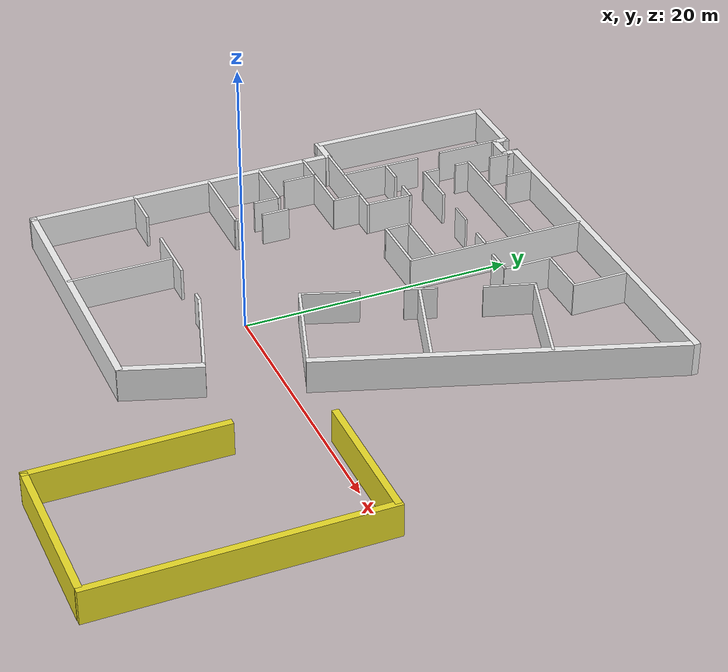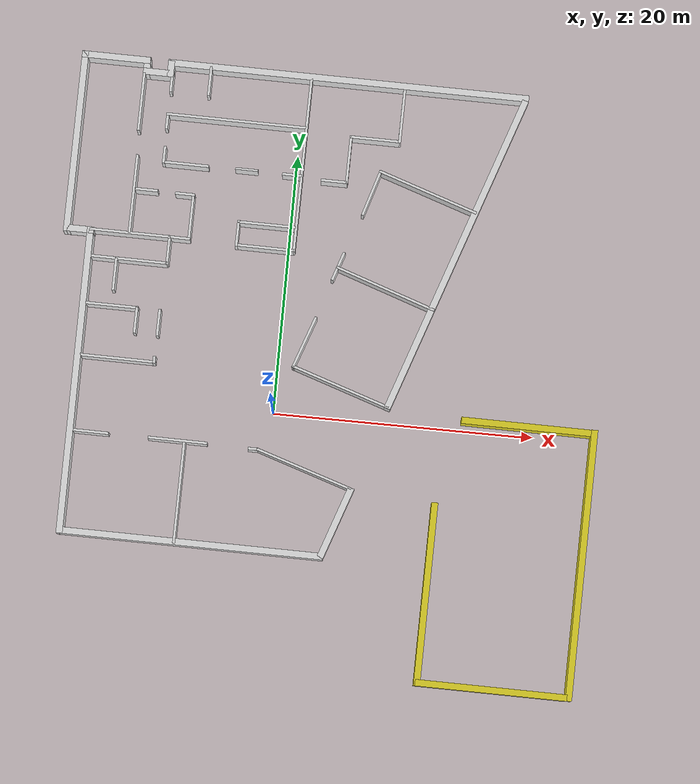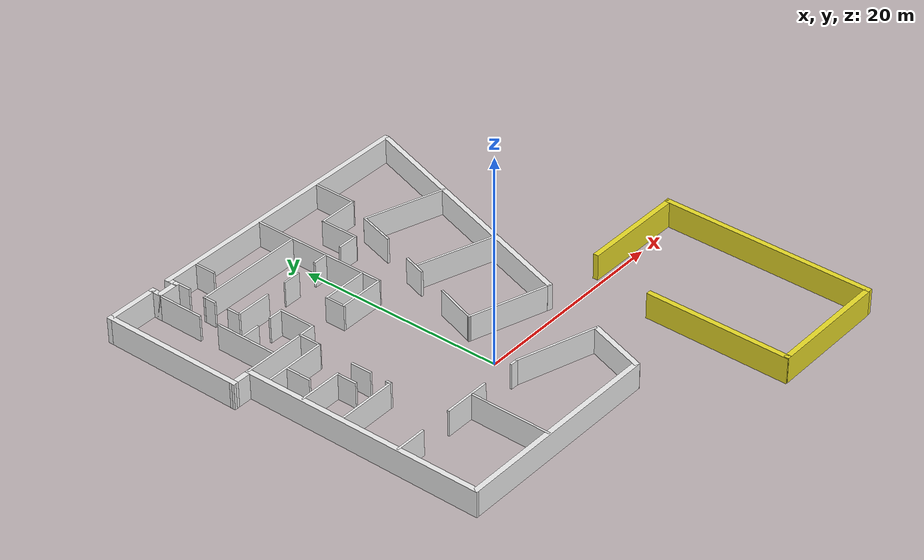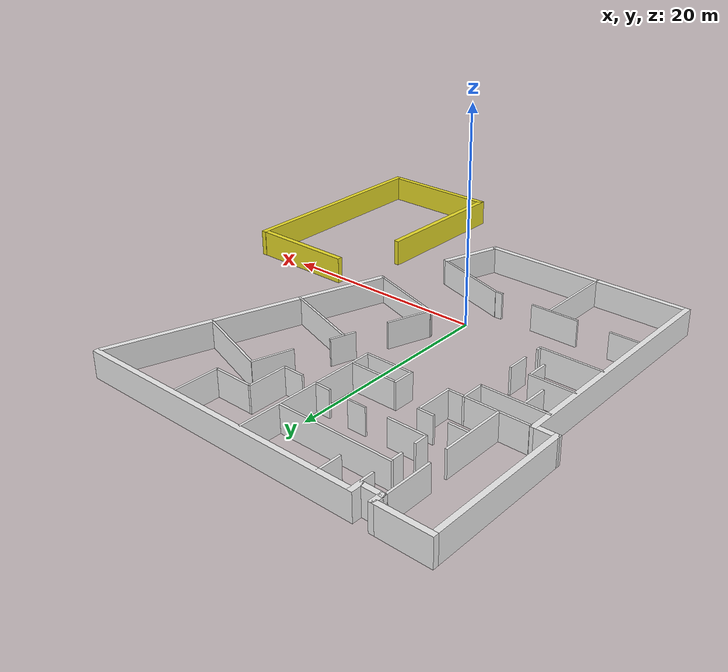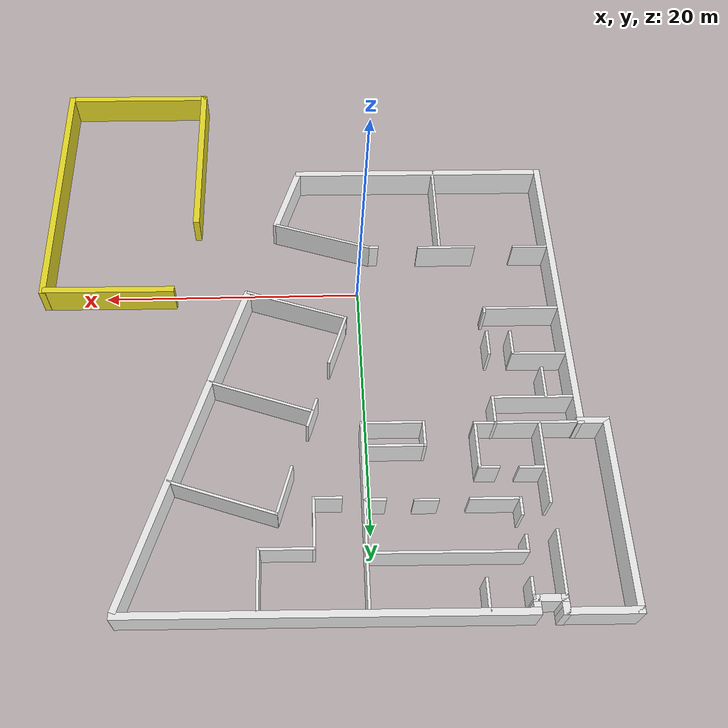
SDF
<sdf version="1.7">
 <world name="default">
  <model name="hospital_wall">
   <pose>3.70516 3.23402 0 0 -0 -1.57977</pose>
   <link name="Wall_0">
    <collision name="Wall_0_Collision">
     <geometry><box><size>27.85 0.5 2.5</size></box></geometry>
     <pose>0 0 1.25 0 -0 0</pose>
    </collision>
    <visual name="Wall_0_Visual">
     <pose>0 0 1.25 0 -0 0</pose>
     <geometry><box><size>27.85 0.5 2.5</size></box></geometry>
     <material>
      <script><uri>file://media/materials/scripts/gazebo.material</uri><name>Gazebo/White</name></script>
      <ambient>1 1 1 1</ambient>
     </material>
     <meta><layer>0</layer></meta>
    </visual>
    <pose>-22.6945 -0.556827 0 0 -0 -1.57078</pose>
   </link>
   <link name="Wall_101">
    <collision name="Wall_101_Collision">
     <geometry><box><size>1.25 0.2 2.5</size></box></geometry>
     <pose>0 0 1.25 0 -0 0</pose>
    </collision>
    <visual name="Wall_101_Visual">
     <pose>0 0 1.25 0 -0 0</pose>
     <geometry><box><size>1.25 0.2 2.5</size></box></geometry>
     <material>
      <script><uri>file://media/materials/scripts/gazebo.material</uri><name>Gazebo/White</name></script>
      <ambient>1 1 1 1</ambient>
     </material>
     <meta><layer>0</layer></meta>
    </visual>
    <pose>-18.1899 -14.0971 0 0 -0 3.14159</pose>
   </link>
   <link name="Wall_103">
    <collision name="Wall_103_Collision">
     <geometry><box><size>1.30009 0.2 2.5</size></box></geometry>
     <pose>0 0 1.25 0 -0 0</pose>
    </collision>
    <visual name="Wall_103_Visual">
     <pose>0 0 1.25 0 -0 0</pose>
     <geometry><box><size>1.30009 0.2 2.5</size></box></geometry>
     <material>
      <script><uri>file://media/materials/scripts/gazebo.material</uri><name>Gazebo/White</name></script>
      <ambient>1 1 1 1</ambient>
     </material>
     <meta><layer>0</layer></meta>
    </visual>
    <pose>-15.5522 -14.0461 0 0 -0 0</pose>
   </link>
   <link name="Wall_105">
    <collision name="Wall_105_Collision">
     <geometry><box><size>3.5 0.2 2.5</size></box></geometry>
     <pose>0 0 1.25 0 -0 0</pose>
    </collision>
    <visual name="Wall_105_Visual">
     <pose>0 0 1.25 0 -0 0</pose>
     <geometry><box><size>3.5 0.2 2.5</size></box></geometry>
     <material>
      <script><uri>file://media/materials/scripts/gazebo.material</uri><name>Gazebo/White</name></script>
      <ambient>1 1 1 1</ambient>
     </material>
     <meta><layer>0</layer></meta>
    </visual>
    <pose>-15.0024 -12.3017 0 0 -0 -1.5708</pose>
   </link>
   <link name="Wall_107">
    <collision name="Wall_107_Collision">
     <geometry><box><size>2.25 0.2 2.5</size></box></geometry>
     <pose>0 0 1.25 0 -0 0</pose>
    </collision>
    <visual name="Wall_107_Visual">
     <pose>0 0 1.25 0 -0 0</pose>
     <geometry><box><size>2.25 0.2 2.5</size></box></geometry>
     <material>
      <script><uri>file://media/materials/scripts/gazebo.material</uri><name>Gazebo/White</name></script>
      <ambient>1 1 1 1</ambient>
     </material>
     <meta><layer>0</layer></meta>
    </visual>
    <pose>-21.5791 -11.151 0 0 -0 3.14159</pose>
   </link>
   <link name="Wall_109">
    <collision name="Wall_109_Collision">
     <geometry><box><size>1.5 0.2 2.5</size></box></geometry>
     <pose>0 0 1.25 0 -0 0</pose>
    </collision>
    <visual name="Wall_109_Visual">
     <pose>0 0 1.25 0 -0 0</pose>
     <geometry><box><size>1.5 0.2 2.5</size></box></geometry>
     <material>
      <script><uri>file://media/materials/scripts/gazebo.material</uri><name>Gazebo/White</name></script>
      <ambient>1 1 1 1</ambient>
     </material>
     <meta><layer>0</layer></meta>
    </visual>
    <pose>-12.697 -12.138 0 0 -0 1.5708</pose>
   </link>
   <link name="Wall_111">
    <collision name="Wall_111_Collision">
     <geometry><box><size>6.05 0.2 2.5</size></box></geometry>
     <pose>0 0 1.25 0 -0 0</pose>
    </collision>
    <visual name="Wall_111_Visual">
     <pose>0 0 1.25 0 -0 0</pose>
     <geometry><box><size>6.05 0.2 2.5</size></box></geometry>
     <material>
      <script><uri>file://media/materials/scripts/gazebo.material</uri><name>Gazebo/White</name></script>
      <ambient>1 1 1 1</ambient>
     </material>
     <meta><layer>0</layer></meta>
    </visual>
    <pose>-12.3324 -16.088 0 0 -0 0</pose>
   </link>
   <link name="Wall_113">
    <collision name="Wall_113_Collision">
     <geometry><box><size>1.75 0.2 2.5</size></box></geometry>
     <pose>0 0 1.25 0 -0 0</pose>
    </collision>
    <visual name="Wall_113_Visual">
     <pose>0 0 1.25 0 -0 0</pose>
     <geometry><box><size>1.75 0.2 2.5</size></box></geometry>
     <material>
      <script><uri>file://media/materials/scripts/gazebo.material</uri><name>Gazebo/White</name></script>
      <ambient>1 1 1 1</ambient>
     </material>
     <meta><layer>0</layer></meta>
    </visual>
    <pose>-12.7232 -15.1011 0 0 -0 -1.5708</pose>
   </link>
   <link name="Wall_115">
    <collision name="Wall_115_Collision">
     <geometry><box><size>4.5 0.2 2.5</size></box></geometry>
     <pose>0 0 1.25 0 -0 0</pose>
    </collision>
    <visual name="Wall_115_Visual">
     <pose>0 0 1.25 0 -0 0</pose>
     <geometry><box><size>4.5 0.2 2.5</size></box></geometry>
     <material>
      <script><uri>file://media/materials/scripts/gazebo.material</uri><name>Gazebo/White</name></script>
      <ambient>1 1 1 1</ambient>
     </material>
     <meta><layer>0</layer></meta>
    </visual>
    <pose>-10.9872 -5.67707 0 0 -0 1.5708</pose>
   </link>
   <link name="Wall_117">
    <collision name="Wall_117_Collision">
     <geometry><box><size>4.5 0.2 2.5</size></box></geometry>
     <pose>0 0 1.25 0 -0 0</pose>
    </collision>
    <visual name="Wall_117_Visual">
     <pose>0 0 1.25 0 -0 0</pose>
     <geometry><box><size>4.5 0.2 2.5</size></box></geometry>
     <material>
      <script><uri>file://media/materials/scripts/gazebo.material</uri><name>Gazebo/White</name></script>
      <ambient>1 1 1 1</ambient>
     </material>
     <meta><layer>0</layer></meta>
    </visual>
    <pose>-9.1948 -5.67532 0 0 -0 1.5708</pose>
   </link>
   <link name="Wall_12">
    <collision name="Wall_12_Collision">
     <geometry><box><size>14 0.5 2.5</size></box></geometry>
     <pose>0 0 1.25 0 -0 0</pose>
    </collision>
    <visual name="Wall_12_Visual">
     <pose>0 0 1.25 0 -0 0</pose>
     <geometry><box><size>14 0.5 2.5</size></box></geometry>
     <material>
      <script><uri>file://media/materials/scripts/gazebo.material</uri><name>Gazebo/White</name></script>
      <ambient>1 1 1 1</ambient>
     </material>
     <meta><layer>0</layer></meta>
    </visual>
    <pose>-15.9442 -20.8921 0 0 -0 0</pose>
   </link>
   <link name="Wall_120">
    <collision name="Wall_120_Collision">
     <geometry><box><size>2 0.2 2.5</size></box></geometry>
     <pose>0 0 1.25 0 -0 0</pose>
    </collision>
    <visual name="Wall_120_Visual">
     <pose>0 0 1.25 0 -0 0</pose>
     <geometry><box><size>2 0.2 2.5</size></box></geometry>
     <material>
      <script><uri>file://media/materials/scripts/gazebo.material</uri><name>Gazebo/White</name></script>
      <ambient>1 1 1 1</ambient>
     </material>
     <meta><layer>0</layer></meta>
    </visual>
    <pose>-10.0892 -7.82789 0 0 -0 0</pose>
   </link>
   <link name="Wall_122">
    <collision name="Wall_122_Collision">
     <geometry><box><size>2.5 0.2 2.5</size></box></geometry>
     <pose>0 0 1.25 0 -0 0</pose>
    </collision>
    <visual name="Wall_122_Visual">
     <pose>0 0 1.25 0 -0 0</pose>
     <geometry><box><size>2.5 0.2 2.5</size></box></geometry>
     <material>
      <script><uri>file://media/materials/scripts/gazebo.material</uri><name>Gazebo/White</name></script>
      <ambient>1 1 1 1</ambient>
     </material>
     <meta><layer>0</layer></meta>
    </visual>
    <pose>-6.02163 -16.8589 0 0 -0 3.14159</pose>
   </link>
   <link name="Wall_124">
    <collision name="Wall_124_Collision">
     <geometry><box><size>4.30001 0.2 2.5</size></box></geometry>
     <pose>0 0 1.25 0 -0 0</pose>
    </collision>
    <visual name="Wall_124_Visual">
     <pose>0 0 1.25 0 -0 0</pose>
     <geometry><box><size>4.30001 0.2 2.5</size></box></geometry>
     <material>
      <script><uri>file://media/materials/scripts/gazebo.material</uri><name>Gazebo/White</name></script>
      <ambient>1 1 1 1</ambient>
     </material>
     <meta><layer>0</layer></meta>
    </visual>
    <pose>-3.60823 -16.9331 0 0 -0 -1.5708</pose>
   </link>
   <link name="Wall_126">
    <collision name="Wall_126_Collision">
     <geometry><box><size>2 0.2 2.5</size></box></geometry>
     <pose>0 0 1.25 0 -0 0</pose>
    </collision>
    <visual name="Wall_126_Visual">
     <pose>0 0 1.25 0 -0 0</pose>
     <geometry><box><size>2 0.2 2.5</size></box></geometry>
     <material>
      <script><uri>file://media/materials/scripts/gazebo.material</uri><name>Gazebo/White</name></script>
      <ambient>1 1 1 1</ambient>
     </material>
     <meta><layer>0</layer></meta>
    </visual>
    <pose>-2.64995 -14.8874 0 0 -0 3.14159</pose>
   </link>
   <link name="Wall_128">
    <collision name="Wall_128_Collision">
     <geometry><box><size>0.55 0.2 2.5</size></box></geometry>
     <pose>0 0 1.25 0 -0 0</pose>
    </collision>
    <visual name="Wall_128_Visual">
     <pose>0 0 1.25 0 -0 0</pose>
     <geometry><box><size>0.55 0.2 2.5</size></box></geometry>
     <material>
      <script><uri>file://media/materials/scripts/gazebo.material</uri><name>Gazebo/White</name></script>
      <ambient>1 1 1 1</ambient>
     </material>
     <meta><layer>0</layer></meta>
    </visual>
    <pose>0.233926 -13.1551 0 0 -0 0</pose>
   </link>
   <link name="Wall_130">
    <collision name="Wall_130_Collision">
     <geometry><box><size>6 0.2 2.5</size></box></geometry>
     <pose>0 0 1.25 0 -0 0</pose>
    </collision>
    <visual name="Wall_130_Visual">
     <pose>0 0 1.25 0 -0 0</pose>
     <geometry><box><size>6 0.2 2.5</size></box></geometry>
     <material>
      <script><uri>file://media/materials/scripts/gazebo.material</uri><name>Gazebo/White</name></script>
      <ambient>1 1 1 1</ambient>
     </material>
     <meta><layer>0</layer></meta>
    </visual>
    <pose>0.407767 -16.0541 0 0 -0 1.5708</pose>
   </link>
   <link name="Wall_132">
    <collision name="Wall_132_Collision">
     <geometry><box><size>4.25 0.2 2.5</size></box></geometry>
     <pose>0 0 1.25 0 -0 0</pose>
    </collision>
    <visual name="Wall_132_Visual">
     <pose>0 0 1.25 0 -0 0</pose>
     <geometry><box><size>4.25 0.2 2.5</size></box></geometry>
     <material>
      <script><uri>file://media/materials/scripts/gazebo.material</uri><name>Gazebo/White</name></script>
      <ambient>1 1 1 1</ambient>
     </material>
     <meta><layer>0</layer></meta>
    </visual>
    <pose>-20.4132 3.82393 0 0 -0 0</pose>
   </link>
   <link name="Wall_134">
    <collision name="Wall_134_Collision">
     <geometry><box><size>3.75 0.2 2.5</size></box></geometry>
     <pose>0 0 1.25 0 -0 0</pose>
    </collision>
    <visual name="Wall_134_Visual">
     <pose>0 0 1.25 0 -0 0</pose>
     <geometry><box><size>3.75 0.2 2.5</size></box></geometry>
     <material>
      <script><uri>file://media/materials/scripts/gazebo.material</uri><name>Gazebo/White</name></script>
      <ambient>1 1 1 1</ambient>
     </material>
     <meta><layer>0</layer></meta>
    </visual>
    <pose>-18.387 1.94161 0 0 -0 1.5708</pose>
   </link>
   <link name="Wall_136">
    <collision name="Wall_136_Collision">
     <geometry><box><size>3.75 0.2 2.5</size></box></geometry>
     <pose>0 0 1.25 0 -0 0</pose>
    </collision>
    <visual name="Wall_136_Visual">
     <pose>0 0 1.25 0 -0 0</pose>
     <geometry><box><size>3.75 0.2 2.5</size></box></geometry>
     <material>
      <script><uri>file://media/materials/scripts/gazebo.material</uri><name>Gazebo/White</name></script>
      <ambient>1 1 1 1</ambient>
     </material>
     <meta><layer>0</layer></meta>
    </visual>
    <pose>-16.6135 0.087292 0 0 -0 3.14159</pose>
   </link>
   <link name="Wall_138">
    <collision name="Wall_138_Collision">
     <geometry><box><size>2 0.2 2.5</size></box></geometry>
     <pose>0 0 1.25 0 -0 0</pose>
    </collision>
    <visual name="Wall_138_Visual">
     <pose>0 0 1.25 0 -0 0</pose>
     <geometry><box><size>2 0.2 2.5</size></box></geometry>
     <material>
      <script><uri>file://media/materials/scripts/gazebo.material</uri><name>Gazebo/White</name></script>
      <ambient>1 1 1 1</ambient>
     </material>
     <meta><layer>0</layer></meta>
    </visual>
    <pose>-14.8374 -0.881729 0 0 -0 1.5708</pose>
   </link>
   <link name="Wall_15">
    <collision name="Wall_15_Collision">
     <geometry><box><size>2.3504 0.5 2.5</size></box></geometry>
     <pose>0 0 1.25 0 -0 0</pose>
    </collision>
    <visual name="Wall_15_Visual">
     <pose>0 0 1.25 0 -0 0</pose>
     <geometry><box><size>2.3504 0.5 2.5</size></box></geometry>
     <material>
      <script><uri>file://media/materials/scripts/gazebo.material</uri><name>Gazebo/White</name></script>
      <ambient>1 1 1 1</ambient>
     </material>
     <meta><layer>0</layer></meta>
    </visual>
    <pose>-9.19703 -19.9669 0 0 -0 1.57382</pose>
   </link>
   <link name="Wall_17">
    <collision name="Wall_17_Collision">
     <geometry><box><size>23.6058 0.5 2.5</size></box></geometry>
     <pose>0 0 1.25 0 -0 0</pose>
    </collision>
    <visual name="Wall_17_Visual">
     <pose>0 0 1.25 0 -0 0</pose>
     <geometry><box><size>23.6058 0.5 2.5</size></box></geometry>
     <material>
      <script><uri>file://media/materials/scripts/gazebo.material</uri><name>Gazebo/White</name></script>
      <ambient>1 1 1 1</ambient>
     </material>
     <meta><layer>0</layer></meta>
    </visual>
    <pose>2.35297 -19.0214 0 0 -0 0.004195</pose>
   </link>
   <link name="Wall_19">
    <collision name="Wall_19_Collision">
     <geometry><box><size>20.4027 0.5 2.5</size></box></geometry>
     <pose>0 0 1.25 0 -0 0</pose>
    </collision>
    <visual name="Wall_19_Visual">
     <pose>0 0 1.25 0 -0 0</pose>
     <geometry><box><size>20.4027 0.5 2.5</size></box></geometry>
     <material>
      <script><uri>file://media/materials/scripts/gazebo.material</uri><name>Gazebo/White</name></script>
      <ambient>1 1 1 1</ambient>
     </material>
     <meta><layer>0</layer></meta>
    </visual>
    <pose>13.9058 -8.99341 0 0 -0 1.5708</pose>
   </link>
   <link name="Wall_2">
    <collision name="Wall_2_Collision">
     <geometry><box><size>1.34953 0.5 2.5</size></box></geometry>
     <pose>0 0 1.25 0 -0 0</pose>
    </collision>
    <visual name="Wall_2_Visual">
     <pose>0 0 1.25 0 -0 0</pose>
     <geometry><box><size>1.34953 0.5 2.5</size></box></geometry>
     <material>
      <script><uri>file://media/materials/scripts/gazebo.material</uri><name>Gazebo/White</name></script>
      <ambient>1 1 1 1</ambient>
     </material>
     <meta><layer>0</layer></meta>
    </visual>
    <pose>-22.2692 -14.2321 0 0 -0 0</pose>
   </link>
   <link name="Wall_21">
    <collision name="Wall_21_Collision">
     <geometry><box><size>25.994 0.5 2.5</size></box></geometry>
     <pose>0 0 1.25 0 -0 0</pose>
    </collision>
    <visual name="Wall_21_Visual">
     <pose>0 0 1.25 0 -0 0</pose>
     <geometry><box><size>25.994 0.5 2.5</size></box></geometry>
     <material>
      <script><uri>file://media/materials/scripts/gazebo.material</uri><name>Gazebo/White</name></script>
      <ambient>1 1 1 1</ambient>
     </material>
     <meta><layer>0</layer></meta>
    </visual>
    <pose>-10.1882 9.03243 0 0 -0 -0.321217</pose>
   </link>
   <link name="Wall_23">
    <collision name="Wall_23_Collision">
     <geometry><box><size>5.92015 0.5 2.5</size></box></geometry>
     <pose>0 0 1.25 0 -0 0</pose>
    </collision>
    <visual name="Wall_23_Visual">
     <pose>0 0 1.25 0 -0 0</pose>
     <geometry><box><size>5.92015 0.5 2.5</size></box></geometry>
     <material>
      <script><uri>file://media/materials/scripts/gazebo.material</uri><name>Gazebo/White</name></script>
      <ambient>1 1 1 1</ambient>
     </material>
     <meta><layer>0</layer></meta>
    </visual>
    <pose>11.2768 1.89793 0 0 -0 -0.322917</pose>
   </link>
   <link name="Wall_25">
    <collision name="Wall_25_Collision">
     <geometry><box><size>10.25 0.5 2.5</size></box></geometry>
     <pose>0 0 1.25 0 -0 0</pose>
    </collision>
    <visual name="Wall_25_Visual">
     <pose>0 0 1.25 0 -0 0</pose>
     <geometry><box><size>10.25 0.5 2.5</size></box></geometry>
     <material>
      <script><uri>file://media/materials/scripts/gazebo.material</uri><name>Gazebo/Yellow</name></script>
      <ambient>1 1 1 1</ambient>
     </material>
     <meta><layer>0</layer></meta>
    </visual>
    <pose>2.44213 15.8139 0 0 -0 1.5708</pose>
   </link>
   <link name="Wall_29">
    <collision name="Wall_29_Collision">
     <geometry><box><size>14 0.5 2.5</size></box></geometry>
     <pose>0 0 1.25 0 -0 0</pose>
    </collision>
    <visual name="Wall_29_Visual">
     <pose>0 0 1.25 0 -0 0</pose>
     <geometry><box><size>14 0.5 2.5</size></box></geometry>
     <material>
      <script><uri>file://media/materials/scripts/gazebo.material</uri><name>Gazebo/Yellow</name></script>
      <ambient>1 1 1 1</ambient>
     </material>
     <meta><layer>0</layer></meta>
    </visual>
    <pose>15.9259 9.2975 0 0 -0 0</pose>
   </link>
   <link name="Wall_31">
    <collision name="Wall_31_Collision">
     <geometry><box><size>11.6 0.5 2.5</size></box></geometry>
     <pose>0 0 1.25 0 -0 0</pose>
    </collision>
    <visual name="Wall_31_Visual">
     <pose>0 0 1.25 0 -0 0</pose>
     <geometry><box><size>11.6 0.5 2.5</size></box></geometry>
     <material>
      <script><uri>file://media/materials/scripts/gazebo.material</uri><name>Gazebo/Yellow</name></script>
      <ambient>1 1 1 1</ambient>
     </material>
     <meta><layer>0</layer></meta>
    </visual>
    <pose>22.6947 14.9589 0 0 -0 1.5708</pose>
   </link>
   <link name="Wall_33">
    <collision name="Wall_33_Collision">
     <geometry><box><size>20.75 0.5 2.5</size></box></geometry>
     <pose>0 0 1.25 0 -0 0</pose>
    </collision>
    <visual name="Wall_33_Visual">
     <pose>0 0 1.25 0 -0 0</pose>
     <geometry><box><size>20.75 0.5 2.5</size></box></geometry>
     <material>
      <script><uri>file://media/materials/scripts/gazebo.material</uri><name>Gazebo/Yellow</name></script>
      <ambient>1 1 1 1</ambient>
     </material>
     <meta><layer>0</layer></meta>
    </visual>
    <pose>12.5443 20.8928 0 0 -0 3.14159</pose>
   </link>
   <link name="Wall_36">
    <collision name="Wall_36_Collision">
     <geometry><box><size>8.02379 0.2 2.5</size></box></geometry>
     <pose>0 0 1.25 0 -0 0</pose>
    </collision>
    <visual name="Wall_36_Visual">
     <pose>0 0 1.25 0 -0 0</pose>
     <geometry><box><size>8.02379 0.2 2.5</size></box></geometry>
     <material>
      <script><uri>file://media/materials/scripts/gazebo.material</uri><name>Gazebo/White</name></script>
      <ambient>1 1 1 1</ambient>
     </material>
     <meta><layer>0</layer></meta>
    </visual>
    <pose>0.840579 1.20633 0 0 -0 1.26174</pose>
   </link>
   <link name="Wall_38">
    <collision name="Wall_38_Collision">
     <geometry><box><size>7.84014 0.2 2.5</size></box></geometry>
     <pose>0 0 1.25 0 -0 0</pose>
    </collision>
    <visual name="Wall_38_Visual">
     <pose>0 0 1.25 0 -0 0</pose>
     <geometry><box><size>7.84014 0.2 2.5</size></box></geometry>
     <material>
      <script><uri>file://media/materials/scripts/gazebo.material</uri><name>Gazebo/White</name></script>
      <ambient>1 1 1 1</ambient>
     </material>
     <meta><layer>0</layer></meta>
    </visual>
    <pose>7.39677 -0.912771 0 0 -0 1.26775</pose>
   </link>
   <link name="Wall_40">
    <collision name="Wall_40_Collision">
     <geometry><box><size>0.75 0.2 2.5</size></box></geometry>
     <pose>0 0 1.25 0 -0 0</pose>
    </collision>
    <visual name="Wall_40_Visual">
     <pose>0 0 1.25 0 -0 0</pose>
     <geometry><box><size>0.75 0.2 2.5</size></box></geometry>
     <material>
      <script><uri>file://media/materials/scripts/gazebo.material</uri><name>Gazebo/White</name></script>
      <ambient>1 1 1 1</ambient>
     </material>
     <meta><layer>0</layer></meta>
    </visual>
    <pose>6.25677 -4.94668 0 0 -0 1.5708</pose>
   </link>
   <link name="Wall_42">
    <collision name="Wall_42_Collision">
     <geometry><box><size>4.54982 0.2 2.5</size></box></geometry>
     <pose>0 0 1.25 0 -0 0</pose>
    </collision>
    <visual name="Wall_42_Visual">
     <pose>0 0 1.25 0 -0 0</pose>
     <geometry><box><size>4.54982 0.2 2.5</size></box></geometry>
     <material>
      <script><uri>file://media/materials/scripts/gazebo.material</uri><name>Gazebo/White</name></script>
      <ambient>1 1 1 1</ambient>
     </material>
     <meta><layer>0</layer></meta>
    </visual>
    <pose>6.18977 -10.7381 0 0 -0 -1.5708</pose>
   </link>
   <link name="Wall_45">
    <collision name="Wall_45_Collision">
     <geometry><box><size>3.05045 0.2 2.5</size></box></geometry>
     <pose>0 0 1.25 0 -0 0</pose>
    </collision>
    <visual name="Wall_45_Visual">
     <pose>0 0 1.25 0 -0 0</pose>
     <geometry><box><size>3.05045 0.2 2.5</size></box></geometry>
     <material>
      <script><uri>file://media/materials/scripts/gazebo.material</uri><name>Gazebo/White</name></script>
      <ambient>1 1 1 1</ambient>
     </material>
     <meta><layer>0</layer></meta>
    </visual>
    <pose>6.19877 -17.5651 0 0 -0 -1.5708</pose>
   </link>
   <link name="Wall_47">
    <collision name="Wall_47_Collision">
     <geometry><box><size>7.79995 0.2 2.5</size></box></geometry>
     <pose>0 0 1.25 0 -0 0</pose>
    </collision>
    <visual name="Wall_47_Visual">
     <pose>0 0 1.25 0 -0 0</pose>
     <geometry><box><size>7.79995 0.2 2.5</size></box></geometry>
     <material>
      <script><uri>file://media/materials/scripts/gazebo.material</uri><name>Gazebo/White</name></script>
      <ambient>1 1 1 1</ambient>
     </material>
     <meta><layer>0</layer></meta>
    </visual>
    <pose>10.1328 -10.2061 0 0 -0 0</pose>
   </link>
   <link name="Wall_5">
    <collision name="Wall_5_Collision">
     <geometry><box><size>2.35 0.5 2.5</size></box></geometry>
     <pose>0 0 1.25 0 -0 0</pose>
    </collision>
    <visual name="Wall_5_Visual">
     <pose>0 0 1.25 0 -0 0</pose>
     <geometry><box><size>2.35 0.5 2.5</size></box></geometry>
     <material>
      <script><uri>file://media/materials/scripts/gazebo.material</uri><name>Gazebo/White</name></script>
      <ambient>1 1 1 1</ambient>
     </material>
     <meta><layer>0</layer></meta>
    </visual>
    <pose>-21.8442 -15.1571 0 0 -0 -1.5708</pose>
   </link>
   <link name="Wall_58">
    <collision name="Wall_58_Collision">
     <geometry><box><size>4.27097 0.2 2.5</size></box></geometry>
     <pose>0 0 1.25 0 -0 0</pose>
    </collision>
    <visual name="Wall_58_Visual">
     <pose>0 0 1.25 0 -0 0</pose>
     <geometry><box><size>4.27097 0.2 2.5</size></box></geometry>
     <material>
      <script><uri>file://media/materials/scripts/gazebo.material</uri><name>Gazebo/White</name></script>
      <ambient>1 1 1 1</ambient>
     </material>
     <meta><layer>0</layer></meta>
    </visual>
    <pose>-2.27423 -1.85857 0 0 -0 -0.330994</pose>
   </link>
   <link name="Wall_60">
    <collision name="Wall_60_Collision">
     <geometry><box><size>2.33146 0.2 2.5</size></box></geometry>
     <pose>0 0 1.25 0 -0 0</pose>
    </collision>
    <visual name="Wall_60_Visual">
     <pose>0 0 1.25 0 -0 0</pose>
     <geometry><box><size>2.33146 0.2 2.5</size></box></geometry>
     <material>
      <script><uri>file://media/materials/scripts/gazebo.material</uri><name>Gazebo/White</name></script>
      <ambient>1 1 1 1</ambient>
     </material>
     <meta><layer>0</layer></meta>
    </visual>
    <pose>-8.34323 0.115928 0 0 -0 -0.312849</pose>
   </link>
   <link name="Wall_65">
    <collision name="Wall_65_Collision">
     <geometry><box><size>8.18103 0.2 2.5</size></box></geometry>
     <pose>0 0 1.25 0 -0 0</pose>
    </collision>
    <visual name="Wall_65_Visual">
     <pose>0 0 1.25 0 -0 0</pose>
     <geometry><box><size>8.18103 0.2 2.5</size></box></geometry>
     <material>
      <script><uri>file://media/materials/scripts/gazebo.material</uri><name>Gazebo/White</name></script>
      <ambient>1 1 1 1</ambient>
     </material>
     <meta><layer>0</layer></meta>
    </visual>
    <pose>-6.99923 3.88693 0 0 -0 1.25325</pose>
   </link>
   <link name="Wall_68">
    <collision name="Wall_68_Collision">
     <geometry><box><size>8.11404 0.2 2.5</size></box></geometry>
     <pose>0 0 1.25 0 -0 0</pose>
    </collision>
    <visual name="Wall_68_Visual">
     <pose>0 0 1.25 0 -0 0</pose>
     <geometry><box><size>8.11404 0.2 2.5</size></box></geometry>
     <material>
      <script><uri>file://media/materials/scripts/gazebo.material</uri><name>Gazebo/White</name></script>
      <ambient>1 1 1 1</ambient>
     </material>
     <meta><layer>0</layer></meta>
    </visual>
    <pose>-14.7317 6.38193 0 0 -0 1.25964</pose>
   </link>
   <link name="Wall_7">
    <collision name="Wall_7_Collision">
     <geometry><box><size>1.35 0.5 2.5</size></box></geometry>
     <pose>0 0 1.25 0 -0 0</pose>
    </collision>
    <visual name="Wall_7_Visual">
     <pose>0 0 1.25 0 -0 0</pose>
     <geometry><box><size>1.35 0.5 2.5</size></box></geometry>
     <material>
      <script><uri>file://media/materials/scripts/gazebo.material</uri><name>Gazebo/White</name></script>
      <ambient>1 1 1 1</ambient>
     </material>
     <meta><layer>0</layer></meta>
    </visual>
    <pose>-22.2692 -16.0821 0 0 -0 3.14159</pose>
   </link>
   <link name="Wall_70">
    <collision name="Wall_70_Collision">
     <geometry><box><size>3.72528 0.2 2.5</size></box></geometry>
     <pose>0 0 1.25 0 -0 0</pose>
    </collision>
    <visual name="Wall_70_Visual">
     <pose>0 0 1.25 0 -0 0</pose>
     <geometry><box><size>3.72528 0.2 2.5</size></box></geometry>
     <material>
      <script><uri>file://media/materials/scripts/gazebo.material</uri><name>Gazebo/White</name></script>
      <ambient>1 1 1 1</ambient>
     </material>
     <meta><layer>0</layer></meta>
    </visual>
    <pose>-14.2362 2.09543 0 0 -0 -0.292055</pose>
   </link>
   <link name="Wall_72">
    <collision name="Wall_72_Collision">
     <geometry><box><size>6.25 0.2 2.5</size></box></geometry>
     <pose>0 0 1.25 0 -0 0</pose>
    </collision>
    <visual name="Wall_72_Visual">
     <pose>0 0 1.25 0 -0 0</pose>
     <geometry><box><size>6.25 0.2 2.5</size></box></geometry>
     <material>
      <script><uri>file://media/materials/scripts/gazebo.material</uri><name>Gazebo/White</name></script>
      <ambient>1 1 1 1</ambient>
     </material>
     <meta><layer>0</layer></meta>
    </visual>
    <pose>-7.24323 -16.0931 0 0 -0 -1.5708</pose>
   </link>
   <link name="Wall_77">
    <collision name="Wall_77_Collision">
     <geometry><box><size>6.25 0.2 2.5</size></box></geometry>
     <pose>0 0 1.25 0 -0 0</pose>
    </collision>
    <visual name="Wall_77_Visual">
     <pose>0 0 1.25 0 -0 0</pose>
     <geometry><box><size>6.25 0.2 2.5</size></box></geometry>
     <material>
      <script><uri>file://media/materials/scripts/gazebo.material</uri><name>Gazebo/White</name></script>
      <ambient>1 1 1 1</ambient>
     </material>
     <meta><layer>0</layer></meta>
    </visual>
    <pose>-9.29023 -16.0101 0 0 -0 1.5708</pose>
   </link>
   <link name="Wall_81">
    <collision name="Wall_81_Collision">
     <geometry><box><size>2.25 0.2 2.5</size></box></geometry>
     <pose>0 0 1.25 0 -0 0</pose>
    </collision>
    <visual name="Wall_81_Visual">
     <pose>0 0 1.25 0 -0 0</pose>
     <geometry><box><size>2.25 0.2 2.5</size></box></geometry>
     <material>
      <script><uri>file://media/materials/scripts/gazebo.material</uri><name>Gazebo/White</name></script>
      <ambient>1 1 1 1</ambient>
     </material>
     <meta><layer>0</layer></meta>
    </visual>
    <pose>-8.2697 -12.9678 0 0 -0 0</pose>
   </link>
   <link name="Wall_83">
    <collision name="Wall_83_Collision">
     <geometry><box><size>2.04976 0.2 2.5</size></box></geometry>
     <pose>0 0 1.25 0 -0 0</pose>
    </collision>
    <visual name="Wall_83_Visual">
     <pose>0 0 1.25 0 -0 0</pose>
     <geometry><box><size>2.04976 0.2 2.5</size></box></geometry>
     <material>
      <script><uri>file://media/materials/scripts/gazebo.material</uri><name>Gazebo/White</name></script>
      <ambient>1 1 1 1</ambient>
     </material>
     <meta><layer>0</layer></meta>
    </visual>
    <pose>-2.65423 -13.1321 0 0 -0 0</pose>
   </link>
   <link name="Wall_85">
    <collision name="Wall_85_Collision">
     <geometry><box><size>1.55 0.2 2.5</size></box></geometry>
     <pose>0 0 1.25 0 -0 0</pose>
    </collision>
    <visual name="Wall_85_Visual">
     <pose>0 0 1.25 0 -0 0</pose>
     <geometry><box><size>1.55 0.2 2.5</size></box></geometry>
     <material>
      <script><uri>file://media/materials/scripts/gazebo.material</uri><name>Gazebo/White</name></script>
      <ambient>1 1 1 1</ambient>
     </material>
     <meta><layer>0</layer></meta>
    </visual>
    <pose>-9.28482 -12.1541 0 0 -0 -1.5708</pose>
   </link>
   <link name="Wall_87">
    <collision name="Wall_87_Collision">
     <geometry><box><size>3.5 0.2 2.5</size></box></geometry>
     <pose>0 0 1.25 0 -0 0</pose>
    </collision>
    <visual name="Wall_87_Visual">
     <pose>0 0 1.25 0 -0 0</pose>
     <geometry><box><size>3.5 0.2 2.5</size></box></geometry>
     <material>
      <script><uri>file://media/materials/scripts/gazebo.material</uri><name>Gazebo/White</name></script>
      <ambient>1 1 1 1</ambient>
     </material>
     <meta><layer>0</layer></meta>
    </visual>
    <pose>-10.9541 -11.492 0 0 -0 0</pose>
   </link>
   <link name="Wall_89">
    <collision name="Wall_89_Collision">
     <geometry><box><size>4.5 0.2 2.5</size></box></geometry>
     <pose>0 0 1.25 0 -0 0</pose>
    </collision>
    <visual name="Wall_89_Visual">
     <pose>0 0 1.25 0 -0 0</pose>
     <geometry><box><size>4.5 0.2 2.5</size></box></geometry>
     <material>
      <script><uri>file://media/materials/scripts/gazebo.material</uri><name>Gazebo/White</name></script>
      <ambient>1 1 1 1</ambient>
     </material>
     <meta><layer>0</layer></meta>
    </visual>
    <pose>-19.4706 -16.2291 0 0 -0 0</pose>
   </link>
   <link name="Wall_9">
    <collision name="Wall_9_Collision">
     <geometry><box><size>5.31023 0.5 2.5</size></box></geometry>
     <pose>0 0 1.25 0 -0 0</pose>
    </collision>
    <visual name="Wall_9_Visual">
     <pose>0 0 1.25 0 -0 0</pose>
     <geometry><box><size>5.31023 0.5 2.5</size></box></geometry>
     <material>
      <script><uri>file://media/materials/scripts/gazebo.material</uri><name>Gazebo/White</name></script>
      <ambient>1 1 1 1</ambient>
     </material>
     <meta><layer>0</layer></meta>
    </visual>
    <pose>-22.6942 -18.4871 0 0 -0 -1.5708</pose>
   </link>
   <link name="Wall_91">
    <collision name="Wall_91_Collision">
     <geometry><box><size>13.5 0.2 2.5</size></box></geometry>
     <pose>0 0 1.25 0 -0 0</pose>
    </collision>
    <visual name="Wall_91_Visual">
     <pose>0 0 1.25 0 -0 0</pose>
     <geometry><box><size>13.5 0.2 2.5</size></box></geometry>
     <material>
      <script><uri>file://media/materials/scripts/gazebo.material</uri><name>Gazebo/White</name></script>
      <ambient>1 1 1 1</ambient>
     </material>
     <meta><layer>0</layer></meta>
    </visual>
    <pose>-15.8452 -3.39907 0 0 -0 0</pose>
   </link>
   <link name="Wall_93">
    <collision name="Wall_93_Collision">
     <geometry><box><size>1.5 0.2 2.5</size></box></geometry>
     <pose>0 0 1.25 0 -0 0</pose>
    </collision>
    <visual name="Wall_93_Visual">
     <pose>0 0 1.25 0 -0 0</pose>
     <geometry><box><size>1.5 0.2 2.5</size></box></geometry>
     <material>
      <script><uri>file://media/materials/scripts/gazebo.material</uri><name>Gazebo/White</name></script>
      <ambient>1 1 1 1</ambient>
     </material>
     <meta><layer>0</layer></meta>
    </visual>
    <pose>-14.9992 -4.12907 0 0 -0 1.5708</pose>
   </link>
   <link name="Wall_95">
    <collision name="Wall_95_Collision">
     <geometry><box><size>1.75 0.15 2.5</size></box></geometry>
     <pose>0 0 1.25 0 -0 0</pose>
    </collision>
    <visual name="Wall_95_Visual">
     <pose>0 0 1.25 0 -0 0</pose>
     <geometry><box><size>1.75 0.15 2.5</size></box></geometry>
     <material>
      <script><uri>file://media/materials/scripts/gazebo.material</uri><name>Gazebo/White</name></script>
      <ambient>1 1 1 1</ambient>
     </material>
     <meta><layer>0</layer></meta>
    </visual>
    <pose>-15.0568 -7.62987 0 0 -0 -1.5708</pose>
   </link>
   <link name="Wall_97">
    <collision name="Wall_97_Collision">
     <geometry><box><size>10.75 0.2 2.5</size></box></geometry>
     <pose>0 0 1.25 0 -0 0</pose>
    </collision>
    <visual name="Wall_97_Visual">
     <pose>0 0 1.25 0 -0 0</pose>
     <geometry><box><size>10.75 0.2 2.5</size></box></geometry>
     <material>
      <script><uri>file://media/materials/scripts/gazebo.material</uri><name>Gazebo/White</name></script>
      <ambient>1 1 1 1</ambient>
     </material>
     <meta><layer>0</layer></meta>
    </visual>
    <pose>-18.7202 -8.82507 0 0 -0 -1.5708</pose>
   </link>
   <link name="Wall_99">
    <collision name="Wall_99_Collision">
     <geometry><box><size>1.5 0.2 2.5</size></box></geometry>
     <pose>0 0 1.25 0 -0 0</pose>
    </collision>
    <visual name="Wall_99_Visual">
     <pose>0 0 1.25 0 -0 0</pose>
     <geometry><box><size>1.5 0.2 2.5</size></box></geometry>
     <material>
      <script><uri>file://media/materials/scripts/gazebo.material</uri><name>Gazebo/White</name></script>
      <ambient>1 1 1 1</ambient>
     </material>
     <meta><layer>0</layer></meta>
    </visual>
    <pose>-21.1918 -14.0784 0 0 -0 3.14159</pose>
   </link>
   <static>1</static>
  </model>
 </world>
</sdf>
